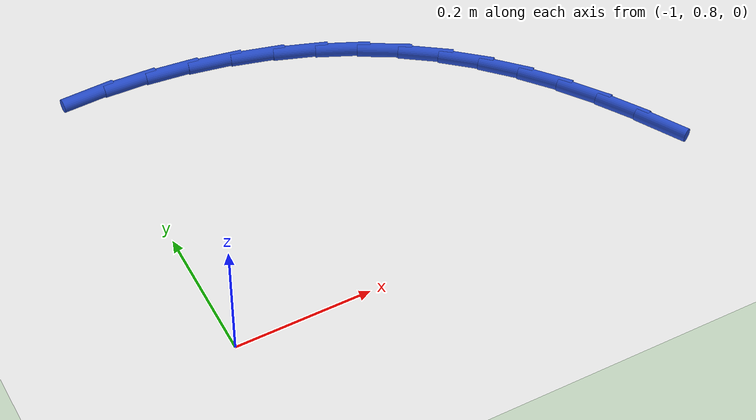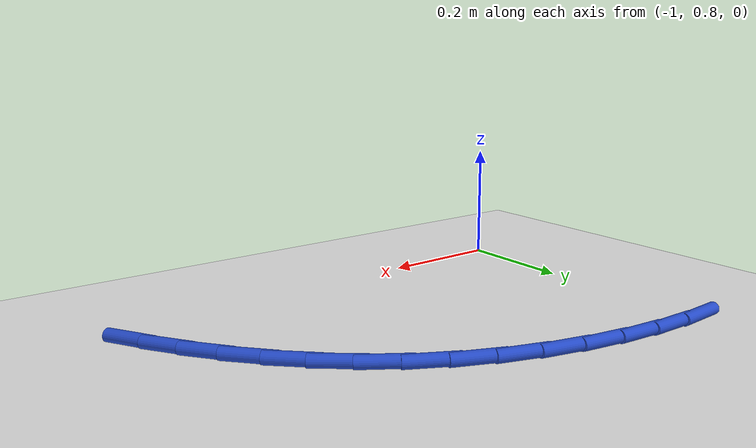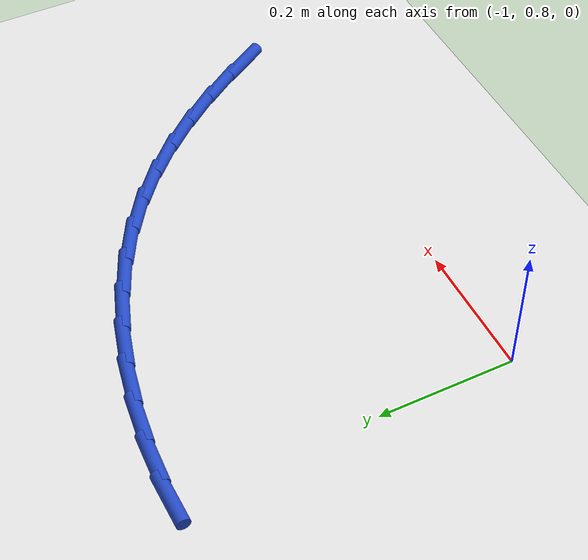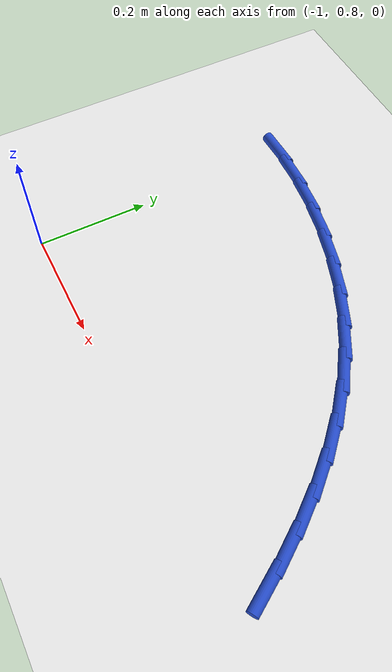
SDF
<sdf version="1.6">
 <world name="default">
  <model name="ground_plane">
   <static>1</static>
   <link name="link">
    <collision name="collision">
     <geometry><plane><normal>0 0 1</normal><size>100 100</size></plane></geometry>
     <surface><friction><ode><mu>100</mu><mu2>50</mu2></ode></friction></surface>
    </collision>
    <visual name="visual">
     <cast_shadows>0</cast_shadows>
     <geometry><plane><normal>0 0 1</normal><size>100 100</size></plane></geometry>
     <material>
      <script><uri>file://media/materials/scripts/gazebo.material</uri><name>Gazebo/WhiteGlow</name></script>
     </material>
    </visual>
   </link>
  </model>
  <model name="line">
   <link name="link_15">
    <pose>-0.3024585033127004 0.8658102061823562 0.01 0 1.57 -1.0206237737317607</pose>
    <collision name="collision">
     <geometry><cylinder><radius>0.01</radius><length>0.08</length></cylinder></geometry>
    </collision>
    <visual name="visual">
     <material>
      <script><name>Gazebo/Blue</name><uri>file://media/materials/scripts/gazebo.material</uri></script>
     </material>
     <geometry><cylinder><radius>0.01</radius><length>0.08</length></cylinder></geometry>
    </visual>
   </link>
   <link name="link_16">
    <pose>-0.3345152897173379 0.9180759115017594 0.01 0 1.57 -0.969334309831559</pose>
    <collision name="collision">
     <geometry><cylinder><radius>0.01</radius><length>0.08</length></cylinder></geometry>
    </collision>
    <visual name="visual">
     <material>
      <script><name>Gazebo/Blue</name><uri>file://media/materials/scripts/gazebo.material</uri></script>
     </material>
     <geometry><cylinder><radius>0.01</radius><length>0.08</length></cylinder></geometry>
    </visual>
   </link>
   <link name="link_17">
    <pose>-0.36885544105892587 0.9681136337172782 0.01 0 1.57 -0.9102668711112996</pose>
    <collision name="collision">
     <geometry><cylinder><radius>0.01</radius><length>0.08</length></cylinder></geometry>
    </collision>
    <visual name="visual">
     <material>
      <script><name>Gazebo/Blue</name><uri>file://media/materials/scripts/gazebo.material</uri></script>
     </material>
     <geometry><cylinder><radius>0.01</radius><length>0.08</length></cylinder></geometry>
    </visual>
   </link>
   <link name="link_18">
    <pose>-0.405731975270997 1.0155766132723925 0.01 0 1.57 -0.8432328004585636</pose>
    <collision name="collision">
     <geometry><cylinder><radius>0.01</radius><length>0.08</length></cylinder></geometry>
    </collision>
    <visual name="visual">
     <material>
      <script><name>Gazebo/Blue</name><uri>file://media/materials/scripts/gazebo.material</uri></script>
     </material>
     <geometry><cylinder><radius>0.01</radius><length>0.08</length></cylinder></geometry>
    </visual>
   </link>
   <link name="link_19">
    <pose>-0.4453979102870833 1.0601180906105798 0.01 0 1.57 -0.7683110986229865</pose>
    <collision name="collision">
     <geometry><cylinder><radius>0.01</radius><length>0.08</length></cylinder></geometry>
    </collision>
    <visual name="visual">
     <material>
      <script><name>Gazebo/Blue</name><uri>file://media/materials/scripts/gazebo.material</uri></script>
     </material>
     <geometry><cylinder><radius>0.01</radius><length>0.08</length></cylinder></geometry>
    </visual>
   </link>
   <link name="link_20">
    <pose>-0.4881062640407171 1.1013913061753193 0.01 0 1.57 -0.6859733347901288</pose>
    <collision name="collision">
     <geometry><cylinder><radius>0.01</radius><length>0.08</length></cylinder></geometry>
    </collision>
    <visual name="visual">
     <material>
      <script><name>Gazebo/Blue</name><uri>file://media/materials/scripts/gazebo.material</uri></script>
     </material>
     <geometry><cylinder><radius>0.01</radius><length>0.08</length></cylinder></geometry>
    </visual>
   </link>
   <link name="link_21">
    <pose>-0.5341100544654307 1.13904950041009 0.01 0 1.57 -0.5972254716062223</pose>
    <collision name="collision">
     <geometry><cylinder><radius>0.01</radius><length>0.08</length></cylinder></geometry>
    </collision>
    <visual name="visual">
     <material>
      <script><name>Gazebo/Blue</name><uri>file://media/materials/scripts/gazebo.material</uri></script>
     </material>
     <geometry><cylinder><radius>0.01</radius><length>0.08</length></cylinder></geometry>
    </visual>
   </link>
   <link name="link_22">
    <pose>-0.5836598382765199 1.172746890624526 0.01 0 1.57 -0.5070724783470878</pose>
    <collision name="collision">
     <geometry><cylinder><radius>0.01</radius><length>0.08</length></cylinder></geometry>
    </collision>
    <visual name="visual">
     <material>
      <script><name>Gazebo/Blue</name><uri>file://media/materials/scripts/gazebo.material</uri></script>
     </material>
     <geometry><cylinder><radius>0.01</radius><length>0.08</length></cylinder></geometry>
    </visual>
   </link>
   <link name="link_23">
    <pose>-0.6367497406762588 1.202239472695692 0.01 0 1.57 -0.42236565924451064</pose>
    <collision name="collision">
     <geometry><cylinder><radius>0.01</radius><length>0.08</length></cylinder></geometry>
    </collision>
    <visual name="visual">
     <material>
      <script><name>Gazebo/Blue</name><uri>file://media/materials/scripts/gazebo.material</uri></script>
     </material>
     <geometry><cylinder><radius>0.01</radius><length>0.08</length></cylinder></geometry>
    </visual>
   </link>
   <link name="link_24">
    <pose>-0.6928966931353826 1.227472642367348 0.01 0 1.57 -0.34282168448408373</pose>
    <collision name="collision">
     <geometry><cylinder><radius>0.01</radius><length>0.08</length></cylinder></geometry>
    </collision>
    <visual name="visual">
     <material>
      <script><name>Gazebo/Blue</name><uri>file://media/materials/scripts/gazebo.material</uri></script>
     </material>
     <geometry><cylinder><radius>0.01</radius><length>0.08</length></cylinder></geometry>
    </visual>
   </link>
   <link name="link_25">
    <pose>-0.7515656005933218 1.248412444896111 0.01 0 1.57 -0.267325870550183</pose>
    <collision name="collision">
     <geometry><cylinder><radius>0.01</radius><length>0.08</length></cylinder></geometry>
    </collision>
    <visual name="visual">
     <material>
      <script><name>Gazebo/Blue</name><uri>file://media/materials/scripts/gazebo.material</uri></script>
     </material>
     <geometry><cylinder><radius>0.01</radius><length>0.08</length></cylinder></geometry>
    </visual>
   </link>
   <link name="link_26">
    <pose>-0.8122213679895057 1.265024925538596 0.01 0 1.57 -0.1947575808925489</pose>
    <collision name="collision">
     <geometry><cylinder><radius>0.01</radius><length>0.08</length></cylinder></geometry>
    </collision>
    <visual name="visual">
     <material>
      <script><name>Gazebo/Blue</name><uri>file://media/materials/scripts/gazebo.material</uri></script>
     </material>
     <geometry><cylinder><radius>0.01</radius><length>0.08</length></cylinder></geometry>
    </visual>
   </link>
   <link name="link_27">
    <pose>-0.8743289002633655 1.2772761295514188 0.01 0 1.57 -0.12401045571803013</pose>
    <collision name="collision">
     <geometry><cylinder><radius>0.01</radius><length>0.08</length></cylinder></geometry>
    </collision>
    <visual name="visual">
     <material>
      <script><name>Gazebo/Blue</name><uri>file://media/materials/scripts/gazebo.material</uri></script>
     </material>
     <geometry><cylinder><radius>0.01</radius><length>0.08</length></cylinder></geometry>
    </visual>
   </link>
   <link name="link_28">
    <pose>-0.9373531023543309 1.2851321021911952 0.01 0 1.57 -0.05399280786235839</pose>
    <collision name="collision">
     <geometry><cylinder><radius>0.01</radius><length>0.08</length></cylinder></geometry>
    </collision>
    <visual name="visual">
     <material>
      <script><name>Gazebo/Blue</name><uri>file://media/materials/scripts/gazebo.material</uri></script>
     </material>
     <geometry><cylinder><radius>0.01</radius><length>0.08</length></cylinder></geometry>
    </visual>
   </link>
   <link name="link_29">
    <pose>-1.0007588792018325 1.288558888714542 0.01 0 1.57 0.01638299835230632</pose>
    <collision name="collision">
     <geometry><cylinder><radius>0.01</radius><length>0.08</length></cylinder></geometry>
    </collision>
    <visual name="visual">
     <material>
      <script><name>Gazebo/Blue</name><uri>file://media/materials/scripts/gazebo.material</uri></script>
     </material>
     <geometry><cylinder><radius>0.01</radius><length>0.08</length></cylinder></geometry>
    </visual>
   </link>
  </model>
 </world>
</sdf>
